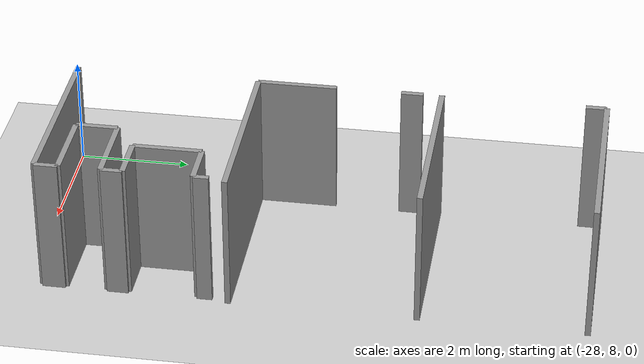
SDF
<sdf version="1.6">
 <world name="default">
  <model name="ground_plane">
   <static>1</static>
   <link name="link">
    <collision name="collision">
     <geometry><plane><normal>0 0 1</normal><size>100 100</size></plane></geometry>
     <surface><friction><ode><mu>100</mu><mu2>50</mu2></ode></friction></surface>
    </collision>
    <visual name="visual">
     <cast_shadows>0</cast_shadows>
     <geometry><plane><normal>0 0 1</normal><size>100 100</size></plane></geometry>
     <material>
      <script><uri>file://media/materials/scripts/gazebo.material</uri><name>Gazebo/Grey</name></script>
     </material>
    </visual>
   </link>
  </model>
  <model name="50052748">
   <static>1</static>
   <link name="Wall_205">
    <collision name="Wall_205_Collision">
     <geometry><box><size>0.366897779717 0.1 2.5</size></box></geometry>
     <pose>0.183448889858 0 1.25 0 0 0</pose>
    </collision>
    <visual name="Wall_205_Visual">
     <pose>0.183448889858 0 1.25 0 0 0</pose>
     <geometry><box><size>0.366897779717 0.1 2.5</size></box></geometry>
     <material>
      <script><uri>file://media/materials/scripts/gazebo.material</uri><name>Gazebo/Grey</name></script>
      <ambient>1 1 1 1</ambient>
     </material>
    </visual>
    <pose>15.4329152838 -4.14938180324 0 0 0 1.57079632679</pose>
   </link>
   <link name="Wall_206">
    <collision name="Wall_206_Collision">
     <geometry><box><size>3.27722278799 0.1 2.5</size></box></geometry>
     <pose>1.638611394 0 1.25 0 0 0</pose>
    </collision>
    <visual name="Wall_206_Visual">
     <pose>1.638611394 0 1.25 0 0 0</pose>
     <geometry><box><size>3.27722278799 0.1 2.5</size></box></geometry>
     <material>
      <script><uri>file://media/materials/scripts/gazebo.material</uri><name>Gazebo/Grey</name></script>
      <ambient>1 1 1 1</ambient>
     </material>
    </visual>
    <pose>15.4329152838 -3.78248402352 0 0 0 0.0</pose>
   </link>
   <link name="Wall_208">
    <collision name="Wall_208_Collision">
     <geometry><box><size>3.27724355776 0.1 2.5</size></box></geometry>
     <pose>1.63862177888 0 1.25 0 0 0</pose>
    </collision>
    <visual name="Wall_208_Visual">
     <pose>1.63862177888 0 1.25 0 0 0</pose>
     <geometry><box><size>3.27724355776 0.1 2.5</size></box></geometry>
     <material>
      <script><uri>file://media/materials/scripts/gazebo.material</uri><name>Gazebo/Grey</name></script>
      <ambient>1 1 1 1</ambient>
     </material>
    </visual>
    <pose>18.7101380718 -6.68773612783 0 0 0 3.13803243489</pose>
   </link>
   <link name="Wall_209">
    <collision name="Wall_209_Collision">
     <geometry><box><size>3.28483214395 0.1 2.5</size></box></geometry>
     <pose>1.64241607197 0 1.25 0 0 0</pose>
    </collision>
    <visual name="Wall_209_Visual">
     <pose>1.64241607197 0 1.25 0 0 0</pose>
     <geometry><box><size>3.28483214395 0.1 2.5</size></box></geometry>
     <material>
      <script><uri>file://media/materials/scripts/gazebo.material</uri><name>Gazebo/Grey</name></script>
      <ambient>1 1 1 1</ambient>
     </material>
    </visual>
    <pose>15.4376077199 -9.95798367286 0 0 0 0.0</pose>
   </link>
   <link name="Wall_212">
    <collision name="Wall_212_Collision">
     <geometry><box><size>0.391628186576 0.1 2.5</size></box></geometry>
     <pose>0.195814093288 0 1.25 0 0 0</pose>
    </collision>
    <visual name="Wall_212_Visual">
     <pose>0.195814093288 0 1.25 0 0 0</pose>
     <geometry><box><size>0.391628186576 0.1 2.5</size></box></geometry>
     <material>
      <script><uri>file://media/materials/scripts/gazebo.material</uri><name>Gazebo/Grey</name></script>
      <ambient>1 1 1 1</ambient>
     </material>
    </visual>
    <pose>15.4376077199 -7.00669496502 0 0 0 -1.57079632679</pose>
   </link>
   <link name="Wall_213">
    <collision name="Wall_213_Collision">
     <geometry><box><size>1.4086186102 0.1 2.5</size></box></geometry>
     <pose>0.704309305101 0 1.25 0 0 0</pose>
    </collision>
    <visual name="Wall_213_Visual">
     <pose>0.704309305101 0 1.25 0 0 0</pose>
     <geometry><box><size>1.4086186102 0.1 2.5</size></box></geometry>
     <material>
      <script><uri>file://media/materials/scripts/gazebo.material</uri><name>Gazebo/Grey</name></script>
      <ambient>1 1 1 1</ambient>
     </material>
    </visual>
    <pose>15.4376077199 -8.54936506266 0 0 0 -1.57079632679</pose>
   </link>
   <link name="Wall_217">
    <collision name="Wall_217_Collision">
     <geometry><box><size>0.268356620076 0.1 2.5</size></box></geometry>
     <pose>0.134178310038 0 1.25 0 0 0</pose>
    </collision>
    <visual name="Wall_217_Visual">
     <pose>0.134178310038 0 1.25 0 0 0</pose>
     <geometry><box><size>0.268356620076 0.1 2.5</size></box></geometry>
     <material>
      <script><uri>file://media/materials/scripts/gazebo.material</uri><name>Gazebo/Grey</name></script>
      <ambient>1 1 1 1</ambient>
     </material>
    </visual>
    <pose>18.6136260737 -10.2406712467 0 0 0 -1.57079632679</pose>
   </link>
   <link name="Wall_218">
    <collision name="Wall_218_Collision">
     <geometry><box><size>0.783129550553 0.1 2.5</size></box></geometry>
     <pose>0.391564775277 0 1.25 0 0 0</pose>
    </collision>
    <visual name="Wall_218_Visual">
     <pose>0.391564775277 0 1.25 0 0 0</pose>
     <geometry><box><size>0.783129550553 0.1 2.5</size></box></geometry>
     <material>
      <script><uri>file://media/materials/scripts/gazebo.material</uri><name>Gazebo/Grey</name></script>
      <ambient>1 1 1 1</ambient>
     </material>
    </visual>
    <pose>18.6136260737 -10.5090278667 0 0 0 3.14159265359</pose>
   </link>
   <link name="Wall_219">
    <collision name="Wall_219_Collision">
     <geometry><box><size>1.20367328977 0.1 2.5</size></box></geometry>
     <pose>0.601836644883 0 1.25 0 0 0</pose>
    </collision>
    <visual name="Wall_219_Visual">
     <pose>0.601836644883 0 1.25 0 0 0</pose>
     <geometry><box><size>1.20367328977 0.1 2.5</size></box></geometry>
     <material>
      <script><uri>file://media/materials/scripts/gazebo.material</uri><name>Gazebo/Grey</name></script>
      <ambient>1 1 1 1</ambient>
     </material>
    </visual>
    <pose>17.8304965232 -10.5090278667 0 0 0 -1.57079632679</pose>
   </link>
   <link name="Wall_220">
    <collision name="Wall_220_Collision">
     <geometry><box><size>0.80494303763 0.1 2.5</size></box></geometry>
     <pose>0.402471518815 0 1.25 0 0 0</pose>
    </collision>
    <visual name="Wall_220_Visual">
     <pose>0.402471518815 0 1.25 0 0 0</pose>
     <geometry><box><size>0.80494303763 0.1 2.5</size></box></geometry>
     <material>
      <script><uri>file://media/materials/scripts/gazebo.material</uri><name>Gazebo/Grey</name></script>
      <ambient>1 1 1 1</ambient>
     </material>
    </visual>
    <pose>17.8304965232 -11.7127011565 0 0 0 0.0</pose>
   </link>
   <link name="Wall_221">
    <collision name="Wall_221_Collision">
     <geometry><box><size>0.377043587659 0.1 2.5</size></box></geometry>
     <pose>0.18852179383 0 1.25 0 0 0</pose>
    </collision>
    <visual name="Wall_221_Visual">
     <pose>0.18852179383 0 1.25 0 0 0</pose>
     <geometry><box><size>0.377043587659 0.1 2.5</size></box></geometry>
     <material>
      <script><uri>file://media/materials/scripts/gazebo.material</uri><name>Gazebo/Grey</name></script>
      <ambient>1 1 1 1</ambient>
     </material>
    </visual>
    <pose>18.6354395608 -11.7127011565 0 0 0 -1.57079632679</pose>
   </link>
   <link name="Wall_222">
    <collision name="Wall_222_Collision">
     <geometry><box><size>1.31971596811 0.1 2.5</size></box></geometry>
     <pose>0.659857984053 0 1.25 0 0 0</pose>
    </collision>
    <visual name="Wall_222_Visual">
     <pose>0.659857984053 0 1.25 0 0 0</pose>
     <geometry><box><size>1.31971596811 0.1 2.5</size></box></geometry>
     <material>
      <script><uri>file://media/materials/scripts/gazebo.material</uri><name>Gazebo/Grey</name></script>
      <ambient>1 1 1 1</ambient>
     </material>
    </visual>
    <pose>18.6354395608 -12.0897447442 0 0 0 3.14159265359</pose>
   </link>
   <link name="Wall_223">
    <collision name="Wall_223_Collision">
     <geometry><box><size>0.732400510841 0.1 2.5</size></box></geometry>
     <pose>0.366200255421 0 1.25 0 0 0</pose>
    </collision>
    <visual name="Wall_223_Visual">
     <pose>0.366200255421 0 1.25 0 0 0</pose>
     <geometry><box><size>0.732400510841 0.1 2.5</size></box></geometry>
     <material>
      <script><uri>file://media/materials/scripts/gazebo.material</uri><name>Gazebo/Grey</name></script>
      <ambient>1 1 1 1</ambient>
     </material>
    </visual>
    <pose>17.3157235927 -12.0897447442 0 0 0 -1.57079632679</pose>
   </link>
   <link name="Wall_224">
    <collision name="Wall_224_Collision">
     <geometry><box><size>1.32694485627 0.1 2.5</size></box></geometry>
     <pose>0.663472428133 0 1.25 0 0 0</pose>
    </collision>
    <visual name="Wall_224_Visual">
     <pose>0.663472428133 0 1.25 0 0 0</pose>
     <geometry><box><size>1.32694485627 0.1 2.5</size></box></geometry>
     <material>
      <script><uri>file://media/materials/scripts/gazebo.material</uri><name>Gazebo/Grey</name></script>
      <ambient>1 1 1 1</ambient>
     </material>
    </visual>
    <pose>17.3157235927 -12.822145255 0 0 0 0.0</pose>
   </link>
   <link name="Wall_225">
    <collision name="Wall_225_Collision">
     <geometry><box><size>0.413314851053 0.1 2.5</size></box></geometry>
     <pose>0.206657425527 0 1.25 0 0 0</pose>
    </collision>
    <visual name="Wall_225_Visual">
     <pose>0.206657425527 0 1.25 0 0 0</pose>
     <geometry><box><size>0.413314851053 0.1 2.5</size></box></geometry>
     <material>
      <script><uri>file://media/materials/scripts/gazebo.material</uri><name>Gazebo/Grey</name></script>
      <ambient>1 1 1 1</ambient>
     </material>
    </visual>
    <pose>18.6426684489 -12.822145255 0 0 0 -1.57079632679</pose>
   </link>
   <link name="Wall_226">
    <collision name="Wall_226_Collision">
     <geometry><box><size>3.21254362284 0.1 2.5</size></box></geometry>
     <pose>1.60627181142 0 1.25 0 0 0</pose>
    </collision>
    <visual name="Wall_226_Visual">
     <pose>1.60627181142 0 1.25 0 0 0</pose>
     <geometry><box><size>3.21254362284 0.1 2.5</size></box></geometry>
     <material>
      <script><uri>file://media/materials/scripts/gazebo.material</uri><name>Gazebo/Grey</name></script>
      <ambient>1 1 1 1</ambient>
     </material>
    </visual>
    <pose>18.6426684489 -13.235460106 0 0 0 -3.14111892578</pose>
   </link>
   <pose>-42.55 21.5022460282 0 0 0 0</pose>
  </model>
 </world>
</sdf>
